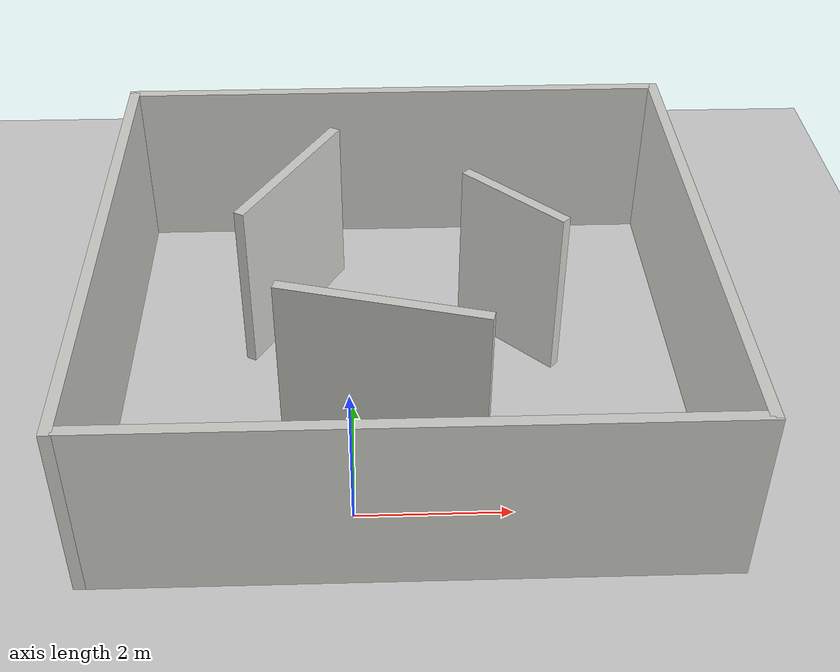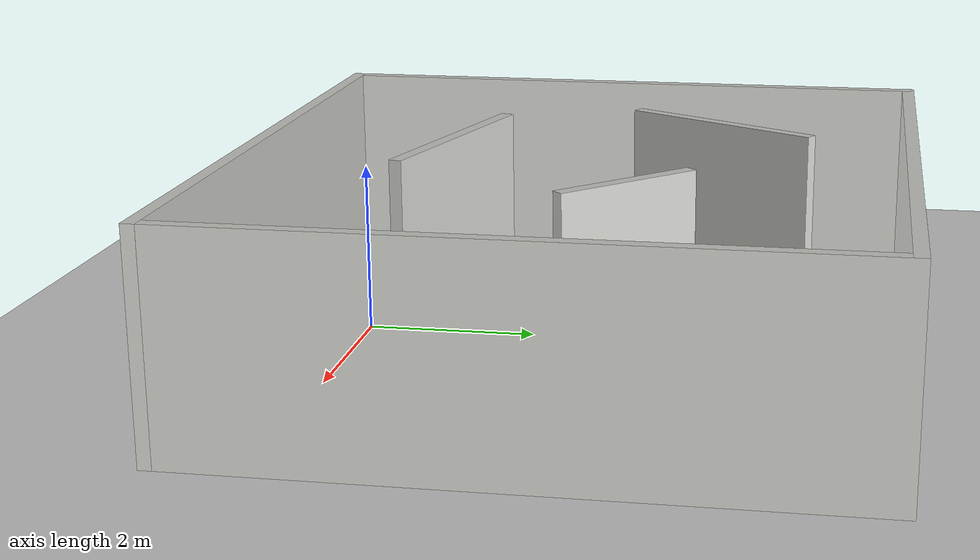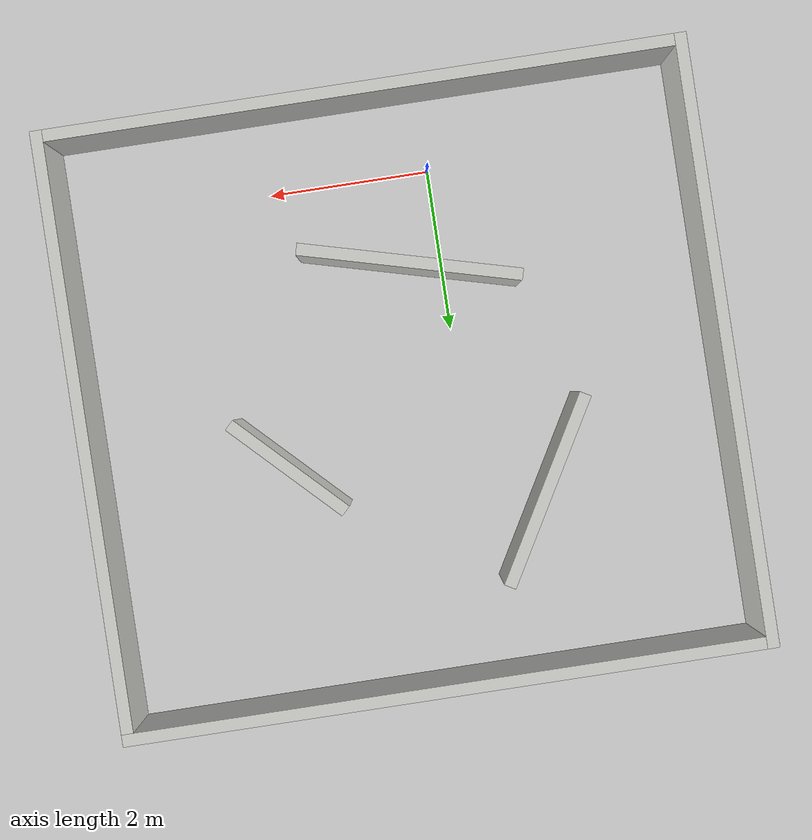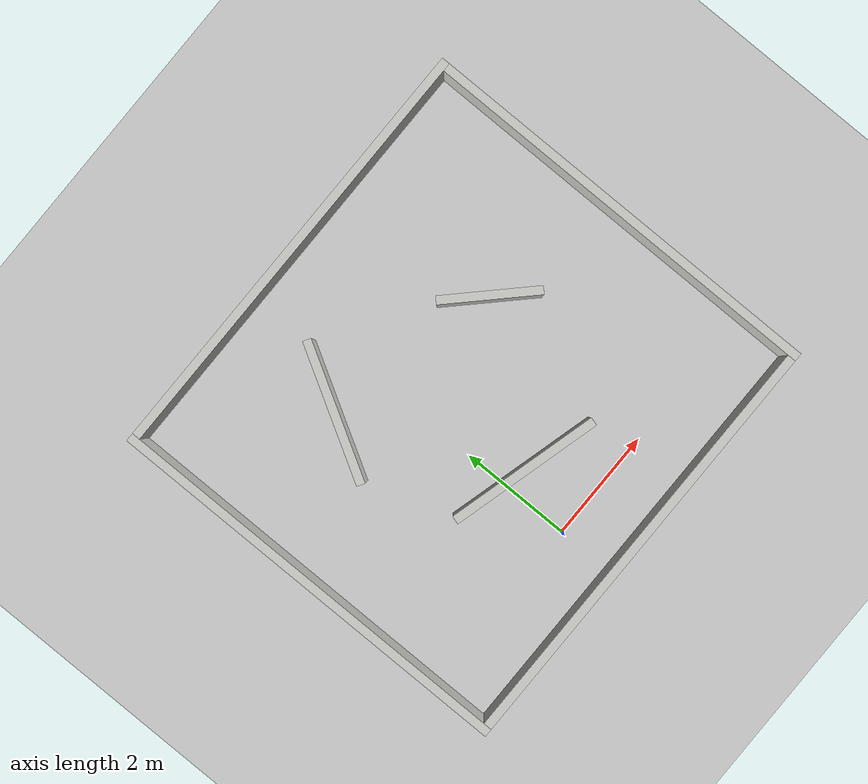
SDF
<sdf version="1.7">
 <world name="default">
  <light name="sun" type="directional">
   <pose>0 0 10 0 -0 0</pose>
   <diffuse>0.8 0.8 0.8 1</diffuse>
   <specular>0.2 0.2 0.2 1</specular>
   <attenuation>
    <range>1000</range>
    <constant>0.9</constant>
    <linear>0.01</linear>
    <quadratic>0.001</quadratic>
   </attenuation>
   <direction>-0.5 0.1 -0.9</direction>
   <spot><inner_angle>0</inner_angle><outer_angle>0</outer_angle><falloff>0</falloff></spot>
  </light>
  <model name="ground_plane">
   <static>1</static>
   <link name="link">
    <collision name="collision">
     <geometry><plane><normal>0 0 1</normal><size>100 100</size></plane></geometry>
     <surface>
      <contact><collide_bitmask>65535</collide_bitmask></contact>
      <friction><ode><mu>100</mu><mu2>50</mu2></ode></friction>
     </surface>
    </collision>
    <visual name="visual">
     <cast_shadows>0</cast_shadows>
     <geometry><plane><normal>0 0 1</normal><size>100 100</size></plane></geometry>
     <material>
      <script><uri>file://media/materials/scripts/gazebo.material</uri><name>Gazebo/Grey</name></script>
     </material>
    </visual>
   </link>
  </model>
  <gravity>0 0 -9.8</gravity>
  <magnetic_field>6e-06 2.3e-05 -4.2e-05</magnetic_field>
  <atmosphere type="adiabatic"/>
  <physics type="ode">
   <max_step_size>0.001</max_step_size>
   <real_time_factor>1</real_time_factor>
   <real_time_update_rate>1000</real_time_update_rate>
  </physics>
  <scene><ambient>0.4 0.4 0.4 1</ambient><background>0.7 0.7 0.7 1</background><shadows>1</shadows></scene>
  <spherical_coordinates>
   <surface_model>EARTH_WGS84</surface_model>
   <latitude_deg>0</latitude_deg>
   <longitude_deg>0</longitude_deg>
   <elevation>0</elevation>
   <heading_deg>0</heading_deg>
  </spherical_coordinates>
  <model name="aaaaaa">
   <pose>0.695 2.685 0 0 -0 0</pose>
   <link name="Wall_0">
    <collision name="Wall_0_Collision">
     <geometry><box><size>7.5 0.15 2.5</size></box></geometry>
     <pose>0 0 1.25 0 -0 0</pose>
    </collision>
    <visual name="Wall_0_Visual">
     <pose>0 0 1.25 0 -0 0</pose>
     <geometry><box><size>7.5 0.15 2.5</size></box></geometry>
     <material>
      <script><uri>file://media/materials/scripts/gazebo.material</uri><name>Gazebo/CeilingTiled</name></script>
      <ambient>1 1 1 1</ambient>
     </material>
     <meta><layer>0</layer></meta>
    </visual>
    <pose>-3.925 0 0 0 -0 1.5708</pose>
   </link>
   <link name="Wall_1">
    <collision name="Wall_1_Collision">
     <geometry><box><size>8 0.15 2.5</size></box></geometry>
     <pose>0 0 1.25 0 -0 0</pose>
    </collision>
    <visual name="Wall_1_Visual">
     <pose>0 0 1.25 0 -0 0</pose>
     <geometry><box><size>8 0.15 2.5</size></box></geometry>
     <material>
      <script><uri>file://media/materials/scripts/gazebo.material</uri><name>Gazebo/CeilingTiled</name></script>
      <ambient>1 1 1 1</ambient>
     </material>
     <meta><layer>0</layer></meta>
    </visual>
    <pose>0 3.675 0 0 -0 0</pose>
   </link>
   <link name="Wall_11">
    <collision name="Wall_11_Collision">
     <geometry><box><size>2.5 0.15 2.5</size></box></geometry>
     <pose>0 0 1.25 0 -0 0</pose>
    </collision>
    <visual name="Wall_11_Visual">
     <pose>0 0 1.25 0 -0 0</pose>
     <geometry><box><size>2.5 0.15 2.5</size></box></geometry>
     <material>
      <script><uri>file://media/materials/scripts/gazebo.material</uri><name>Gazebo/CeilingTiled</name></script>
      <ambient>1 1 1 1</ambient>
     </material>
     <meta><layer>0</layer></meta>
    </visual>
    <pose>-1.5229 1.46262 0 0 -0 -2.0944</pose>
   </link>
   <link name="Wall_13">
    <collision name="Wall_13_Collision">
     <geometry><box><size>1.75 0.15 2.5</size></box></geometry>
     <pose>0 0 1.25 0 -0 0</pose>
    </collision>
    <visual name="Wall_13_Visual">
     <pose>0 0 1.25 0 -0 0</pose>
     <geometry><box><size>1.75 0.15 2.5</size></box></geometry>
     <material>
      <script><uri>file://media/materials/scripts/gazebo.material</uri><name>Gazebo/CeilingTiled</name></script>
      <ambient>1 1 1 1</ambient>
     </material>
     <meta><layer>0</layer></meta>
    </visual>
    <pose>1.5367 0.725189 0 0 -0 -0.785398</pose>
   </link>
   <link name="Wall_15">
    <collision name="Wall_15_Collision">
     <geometry><box><size>2.75 0.15 2.5</size></box></geometry>
     <pose>0 0 1.25 0 -0 0</pose>
    </collision>
    <visual name="Wall_15_Visual">
     <pose>0 0 1.25 0 -0 0</pose>
     <geometry><box><size>2.75 0.15 2.5</size></box></geometry>
     <material>
      <script><uri>file://media/materials/scripts/gazebo.material</uri><name>Gazebo/CeilingTiled</name></script>
      <ambient>1 1 1 1</ambient>
     </material>
     <meta><layer>0</layer></meta>
    </visual>
    <pose>-0.291846 -1.51169 0 0 -0 -0.261799</pose>
   </link>
   <link name="Wall_2">
    <collision name="Wall_2_Collision">
     <geometry><box><size>7.5 0.15 2.5</size></box></geometry>
     <pose>0 0 1.25 0 -0 0</pose>
    </collision>
    <visual name="Wall_2_Visual">
     <pose>0 0 1.25 0 -0 0</pose>
     <geometry><box><size>7.5 0.15 2.5</size></box></geometry>
     <material>
      <script><uri>file://media/materials/scripts/gazebo.material</uri><name>Gazebo/CeilingTiled</name></script>
      <ambient>1 1 1 1</ambient>
     </material>
     <meta><layer>0</layer></meta>
    </visual>
    <pose>3.925 0 0 0 -0 -1.5708</pose>
   </link>
   <link name="Wall_3">
    <collision name="Wall_3_Collision">
     <geometry><box><size>8 0.15 2.5</size></box></geometry>
     <pose>0 0 1.25 0 -0 0</pose>
    </collision>
    <visual name="Wall_3_Visual">
     <pose>0 0 1.25 0 -0 0</pose>
     <geometry><box><size>8 0.15 2.5</size></box></geometry>
     <material>
      <script><uri>file://media/materials/scripts/gazebo.material</uri><name>Gazebo/CeilingTiled</name></script>
      <ambient>1 1 1 1</ambient>
     </material>
     <meta><layer>0</layer></meta>
    </visual>
    <pose>0 -3.675 0 0 -0 3.14159</pose>
   </link>
   <static>1</static>
  </model>
 </world>
</sdf>
